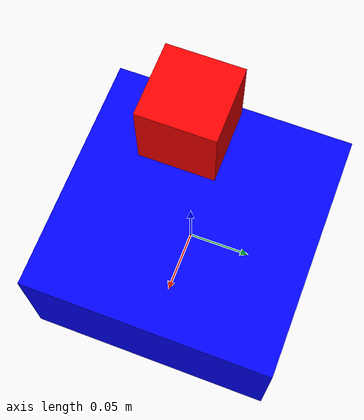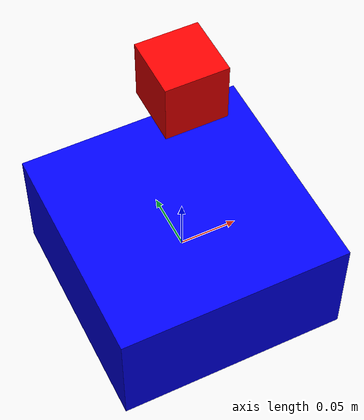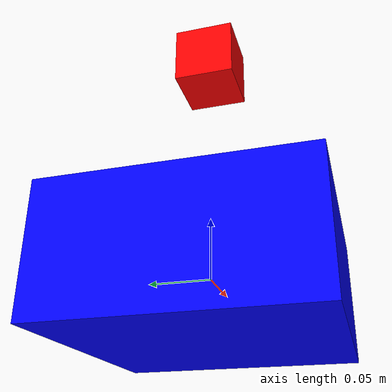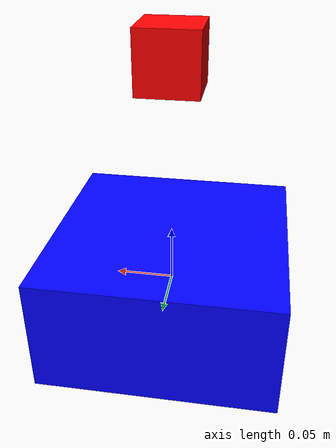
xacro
<?xml version="1.0"?>
<robot name="simple_camera_bot">

  <link name="base_link">
    <inertial>
      <mass value="0.1"/>
      <inertia ixx="0.01" iyy="0.01" izz="0.01" ixy="0" ixz="0" iyz="0"/>
    </inertial>
    <visual>
      <geometry>
        <box size="0.2 0.2 0.1"/>
      </geometry>
      <material name="blue">
        <color rgba="0 0 1 1"/>
      </material>
    </visual>
    <collision>
      <geometry>
        <box size="0.2 0.2 0.1"/>
      </geometry>
    </collision>
  </link>

  <link name="camera_link">
    <inertial>
      <mass value="0.01"/>
      <inertia ixx="0.001" iyy="0.001" izz="0.001" ixy="0" ixz="0" iyz="0"/>
    </inertial>
    <visual>
      <origin xyz="0 0 0.05" rpy="0 0 0"/>
      <geometry>
        <box size="0.05 0.05 0.05"/>
      </geometry>
      <material name="red">
        <color rgba="1 0 0 1"/>
      </material>
    </visual>
    <collision>
      <origin xyz="0 0 0.05" rpy="0 0 0"/>
      <geometry>
        <box size="0.05 0.05 0.05"/>
      </geometry>
    </collision>
    <sensor name="camera_sensor" type="camera">
      <update_rate>30</update_rate>
      <camera>
        <horizontal_fov>1.047</horizontal_fov>
        <image>
          <width>640</width>
          <height>480</height>
          <format>R8G8B8</format>
        </image>
        <clip>
          <near>0.1</near>
          <far>100</far>
        </clip>
      </camera>
      <plugin name="camera_plugin" filename="libgazebo_ros2_camera.so">
        <alwaysOn>true</alwaysOn>
        <updateRate>30.0</updateRate>
        <cameraName>camera</cameraName>
        <imageTopicName>image_raw</imageTopicName>
        <cameraInfoTopicName>camera_info</cameraInfoTopicName>
        <frameName>camera_link</frameName>
      </plugin>
    </sensor>
  </link>

  <joint name="camera_joint" type="fixed">
    <parent link="base_link"/>
    <child link="camera_link"/>
    <origin xyz="0 0 0.15" rpy="0 0 0"/>
  </joint>

</robot>
